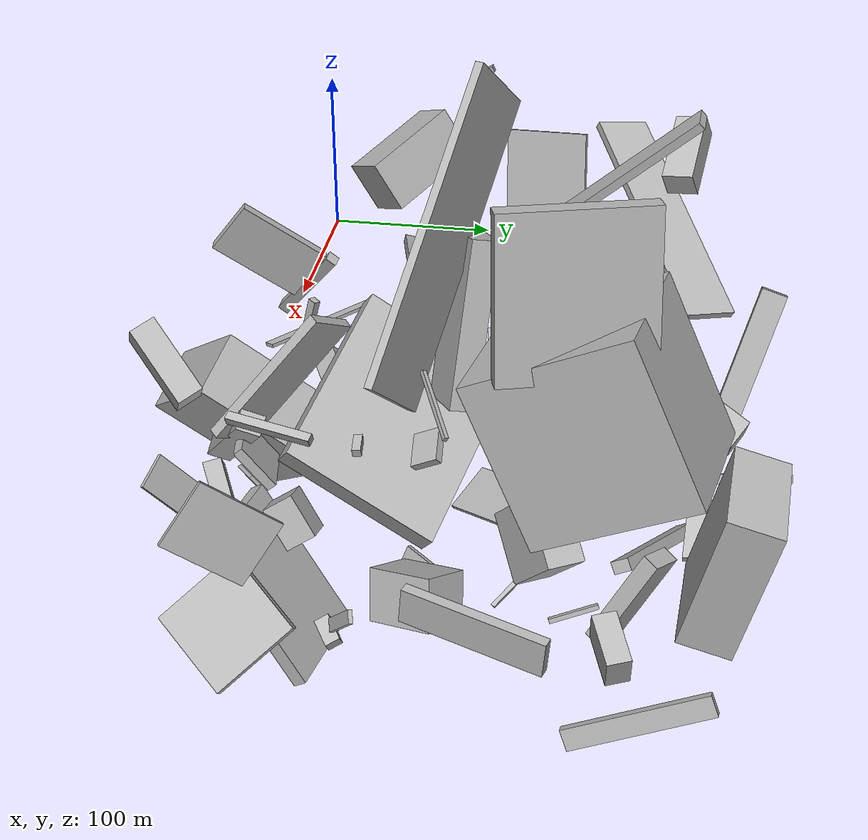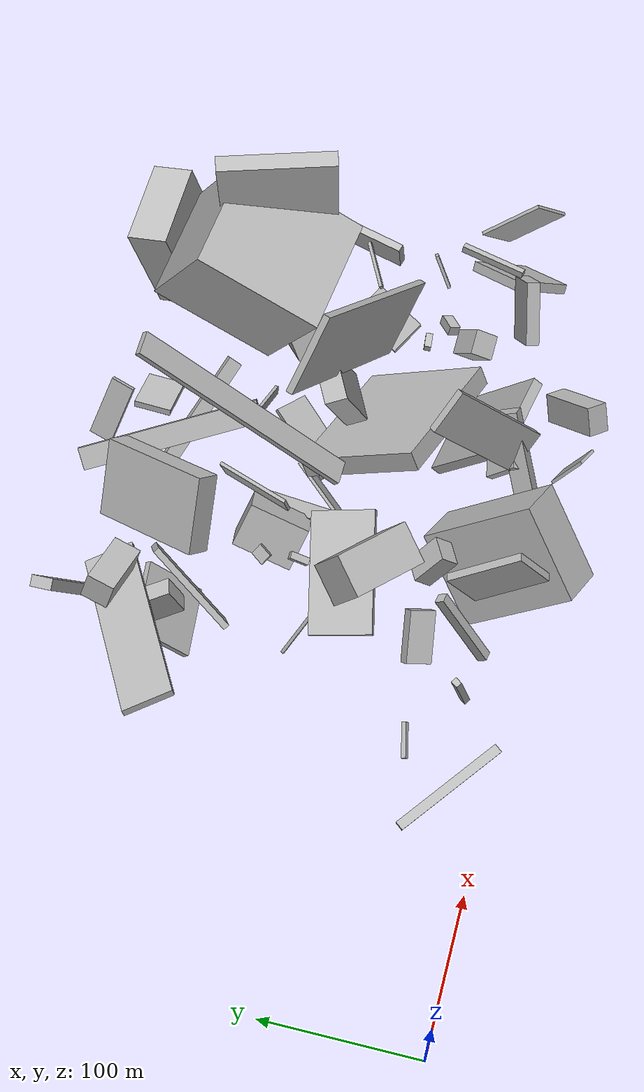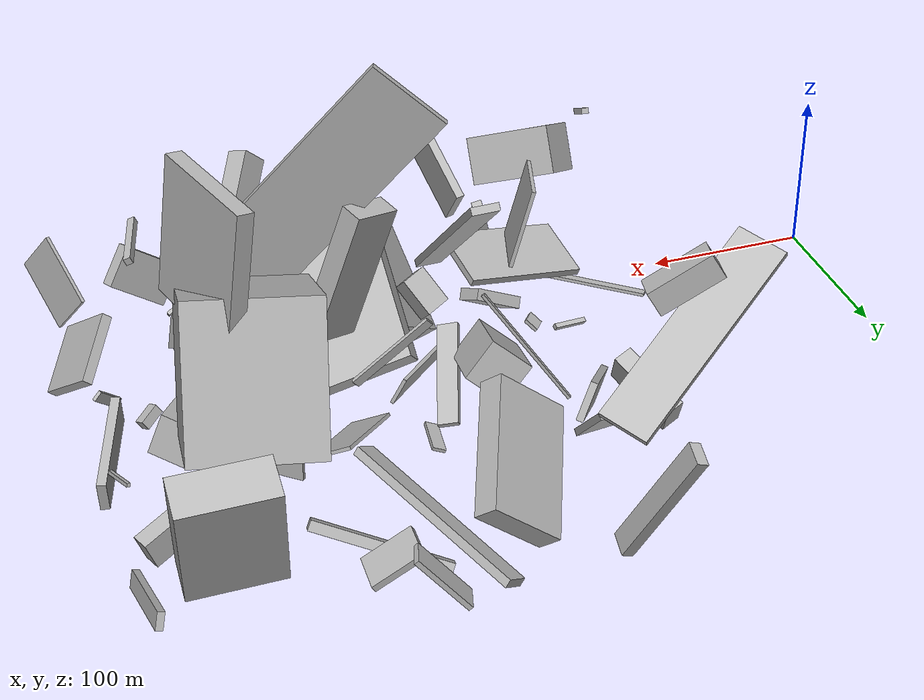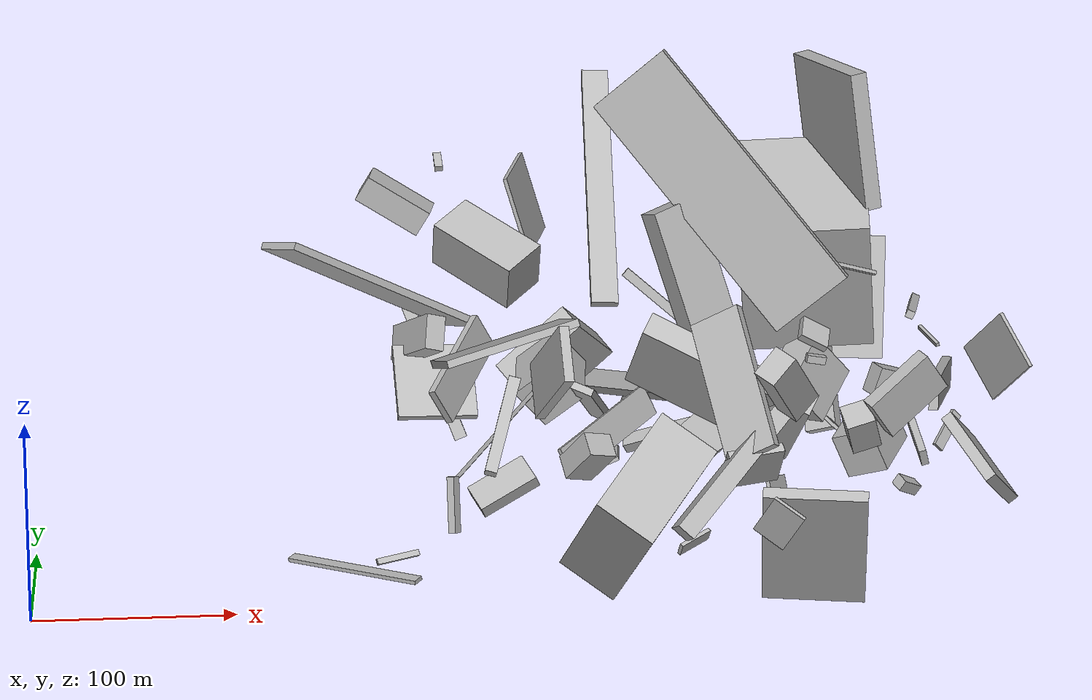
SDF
<sdf version="1.6">
 <world name="default">
  <model name="building_10">
   <static>0</static>
   <pose>349.3916682355485 102.32726992485685 73.5909858808304 0.6535508878157551 -0.4247499859793586 2.8508436178994367</pose>
   <link name="link">
    <gravity>0</gravity>
    <pose>0 0 6.0 0 0 0</pose>
    <collision name="collision"><geometry><box><size>94 79 12</size></box></geometry></collision>
    <visual name="visual">
     <cast_shadows>0</cast_shadows>
     <geometry><box><size>94 79 12</size></box></geometry>
     <material>
      <script>
       <uri>model://HANNAS_wall/materials/scripts</uri>
       <uri>model://HANNAS_wall/materials/textures</uri>
       <name>vrc/HANNAS_wall</name>
      </script>
     </material>
    </visual>
   </link>
  </model>
  <model name="building_12">
   <static>0</static>
   <pose>229.48509822428082 246.81121018663475 76.56518021819456 1.0808599442409188 -0.18571347631877108 -0.9684127808819307</pose>
   <link name="link">
    <gravity>0</gravity>
    <pose>0 0 65.0 0 0 0</pose>
    <collision name="collision"><geometry><box><size>30 4 130</size></box></geometry></collision>
    <visual name="visual">
     <cast_shadows>0</cast_shadows>
     <geometry><box><size>30 4 130</size></box></geometry>
     <material>
      <script>
       <uri>model://HANNAS_wall/materials/scripts</uri>
       <uri>model://HANNAS_wall/materials/textures</uri>
       <name>vrc/HANNAS_wall</name>
      </script>
     </material>
    </visual>
   </link>
  </model>
  <model name="building_13">
   <static>0</static>
   <pose>476.22596330048646 55.025035302774256 49.92848048790816 0.7145055037646388 -0.613770286919436 2.110345174796753</pose>
   <link name="link">
    <gravity>0</gravity>
    <pose>0 0 3.0 0 0 0</pose>
    <collision name="collision"><geometry><box><size>42 41 6</size></box></geometry></collision>
    <visual name="visual">
     <cast_shadows>0</cast_shadows>
     <geometry><box><size>42 41 6</size></box></geometry>
     <material>
      <script>
       <uri>model://HANNAS_wall/materials/scripts</uri>
       <uri>model://HANNAS_wall/materials/textures</uri>
       <name>vrc/HANNAS_wall</name>
      </script>
     </material>
    </visual>
   </link>
  </model>
  <model name="building_14">
   <static>0</static>
   <pose>239.23337273878616 221.9490028804767 78.75479436493148 2.0612796492238603 -0.2522621652858027 -0.6355748640469423</pose>
   <link name="link">
    <gravity>0</gravity>
    <pose>0 0 31.0 0 0 0</pose>
    <collision name="collision"><geometry><box><size>4 22 62</size></box></geometry></collision>
    <visual name="visual">
     <cast_shadows>0</cast_shadows>
     <geometry><box><size>4 22 62</size></box></geometry>
     <material>
      <script>
       <uri>model://HANNAS_wall/materials/scripts</uri>
       <uri>model://HANNAS_wall/materials/textures</uri>
       <name>vrc/HANNAS_wall</name>
      </script>
     </material>
    </visual>
   </link>
  </model>
  <model name="building_18">
   <static>0</static>
   <pose>212.61524835058827 193.76816005071336 38.704160822750225 -0.748787733979258 0.03146018518226774 0.07830064401386899</pose>
   <link name="link">
    <gravity>0</gravity>
    <pose>0 0 21.5 0 0 0</pose>
    <collision name="collision"><geometry><box><size>43 4 43</size></box></geometry></collision>
    <visual name="visual">
     <cast_shadows>0</cast_shadows>
     <geometry><box><size>43 4 43</size></box></geometry>
     <material>
      <script>
       <uri>model://HANNAS_wall/materials/scripts</uri>
       <uri>model://HANNAS_wall/materials/textures</uri>
       <name>vrc/HANNAS_wall</name>
      </script>
     </material>
    </visual>
   </link>
  </model>
  <model name="building_19">
   <static>0</static>
   <pose>317.66948863064147 39.43663740661593 59.19337390758678 2.3729776062961343 -0.6907638690431864 -1.3672699431326427</pose>
   <link name="link">
    <gravity>0</gravity>
    <pose>0 0 31.0 0 0 0</pose>
    <collision name="collision"><geometry><box><size>77 33 62</size></box></geometry></collision>
    <visual name="visual">
     <cast_shadows>0</cast_shadows>
     <geometry><box><size>77 33 62</size></box></geometry>
     <material>
      <script>
       <uri>model://HANNAS_wall/materials/scripts</uri>
       <uri>model://HANNAS_wall/materials/textures</uri>
       <name>vrc/HANNAS_wall</name>
      </script>
     </material>
    </visual>
   </link>
  </model>
  <model name="building_24">
   <static>0</static>
   <pose>291.91103221347555 149.31748298249272 60.06666547251819 2.817948339687129 -0.5257673515670295 -1.887484205575589</pose>
   <link name="link">
    <gravity>0</gravity>
    <pose>0 0 2.0 0 0 0</pose>
    <collision name="collision"><geometry><box><size>60 12 4</size></box></geometry></collision>
    <visual name="visual">
     <cast_shadows>0</cast_shadows>
     <geometry><box><size>60 12 4</size></box></geometry>
     <material>
      <script>
       <uri>model://HANNAS_wall/materials/scripts</uri>
       <uri>model://HANNAS_wall/materials/textures</uri>
       <name>vrc/HANNAS_wall</name>
      </script>
     </material>
    </visual>
   </link>
  </model>
  <model name="building_25">
   <static>0</static>
   <pose>437.33232358384225 255.41760869629286 48.93130082673491 -0.04354635736238333 -0.2560853431122381 -1.6002613684149918</pose>
   <link name="link">
    <gravity>0</gravity>
    <pose>0 0 34.0 0 0 0</pose>
    <collision name="collision"><geometry><box><size>25 52 68</size></box></geometry></collision>
    <visual name="visual">
     <cast_shadows>0</cast_shadows>
     <geometry><box><size>25 52 68</size></box></geometry>
     <material>
      <script>
       <uri>model://HANNAS_wall/materials/scripts</uri>
       <uri>model://HANNAS_wall/materials/textures</uri>
       <name>vrc/HANNAS_wall</name>
      </script>
     </material>
    </visual>
   </link>
  </model>
  <model name="building_35">
   <static>0</static>
   <pose>440.37714078266754 128.89351869209287 30.326729292973454 0.33700126294885036 0.25615929235676976 -2.0681124052917355</pose>
   <link name="link">
    <gravity>0</gravity>
    <pose>0 0 12.0 0 0 0</pose>
    <collision name="collision"><geometry><box><size>34 23 24</size></box></geometry></collision>
    <visual name="visual">
     <cast_shadows>0</cast_shadows>
     <geometry><box><size>34 23 24</size></box></geometry>
     <material>
      <script>
       <uri>model://HANNAS_wall/materials/scripts</uri>
       <uri>model://HANNAS_wall/materials/textures</uri>
       <name>vrc/HANNAS_wall</name>
      </script>
     </material>
    </visual>
   </link>
  </model>
  <model name="building_36">
   <static>0</static>
   <pose>345.0100710728461 74.01044800332367 124.65826033682245 -2.572017452332013 -0.42730659409162414 -2.30638103768517</pose>
   <link name="link">
    <gravity>0</gravity>
    <pose>0 0 38.5 0 0 0</pose>
    <collision name="collision"><geometry><box><size>5 28 77</size></box></geometry></collision>
    <visual name="visual">
     <cast_shadows>0</cast_shadows>
     <geometry><box><size>5 28 77</size></box></geometry>
     <material>
      <script>
       <uri>model://HANNAS_wall/materials/scripts</uri>
       <uri>model://HANNAS_wall/materials/textures</uri>
       <name>vrc/HANNAS_wall</name>
      </script>
     </material>
    </visual>
   </link>
  </model>
  <model name="building_39">
   <static>0</static>
   <pose>460.48556344403187 215.51236503256763 37.234120739768585 -0.3211005590233174 0.07317322246782806 -1.2219230318242558</pose>
   <link name="link">
    <gravity>0</gravity>
    <pose>0 0 8.0 0 0 0</pose>
    <collision name="collision"><geometry><box><size>11 25 16</size></box></geometry></collision>
    <visual name="visual">
     <cast_shadows>0</cast_shadows>
     <geometry><box><size>11 25 16</size></box></geometry>
     <material>
      <script>
       <uri>model://HANNAS_wall/materials/scripts</uri>
       <uri>model://HANNAS_wall/materials/textures</uri>
       <name>vrc/HANNAS_wall</name>
      </script>
     </material>
    </visual>
   </link>
  </model>
  <model name="building_51">
   <static>0</static>
   <pose>257.2610780205307 14.029951884063063 100.75902783209997 0.6472720785679406 -0.09924337517018453 -2.951900712644226</pose>
   <link name="link">
    <gravity>0</gravity>
    <pose>0 0 14.5 0 0 0</pose>
    <collision name="collision"><geometry><box><size>5 50 29</size></box></geometry></collision>
    <visual name="visual">
     <cast_shadows>0</cast_shadows>
     <geometry><box><size>5 50 29</size></box></geometry>
     <material>
      <script>
       <uri>model://HANNAS_wall/materials/scripts</uri>
       <uri>model://HANNAS_wall/materials/textures</uri>
       <name>vrc/HANNAS_wall</name>
      </script>
     </material>
    </visual>
   </link>
  </model>
  <model name="building_53">
   <static>0</static>
   <pose>400.7106434574868 111.9386753954937 119.36921296670712 -0.006293187863851989 -0.7145801039412174 -0.34941741395422776</pose>
   <link name="link">
    <gravity>0</gravity>
    <pose>0 0 75.0 0 0 0</pose>
    <collision name="collision"><geometry><box><size>48 4 150</size></box></geometry></collision>
    <visual name="visual">
     <cast_shadows>0</cast_shadows>
     <geometry><box><size>48 4 150</size></box></geometry>
     <material>
      <script>
       <uri>model://HANNAS_wall/materials/scripts</uri>
       <uri>model://HANNAS_wall/materials/textures</uri>
       <name>vrc/HANNAS_wall</name>
      </script>
     </material>
    </visual>
   </link>
  </model>
  <model name="building_55">
   <static>0</static>
   <pose>294.34741307467766 124.6659244268466 118.38746883575033 -0.8548562881266696 0.041120613764117055 -0.02408567908058497</pose>
   <link name="link">
    <gravity>0</gravity>
    <pose>0 0 75.0 0 0 0</pose>
    <collision name="collision"><geometry><box><size>14 4 150</size></box></geometry></collision>
    <visual name="visual">
     <cast_shadows>0</cast_shadows>
     <geometry><box><size>14 4 150</size></box></geometry>
     <material>
      <script>
       <uri>model://HANNAS_wall/materials/scripts</uri>
       <uri>model://HANNAS_wall/materials/textures</uri>
       <name>vrc/HANNAS_wall</name>
      </script>
     </material>
    </visual>
   </link>
  </model>
  <model name="building_58">
   <static>0</static>
   <pose>284.0725906182624 228.69690941253634 53.98500768876988 0.8139213473627945 -0.4456234440804293 -1.9469502249276551</pose>
   <link name="link">
    <gravity>0</gravity>
    <pose>0 0 7.5 0 0 0</pose>
    <collision name="collision"><geometry><box><size>77 48 15</size></box></geometry></collision>
    <visual name="visual">
     <cast_shadows>0</cast_shadows>
     <geometry><box><size>77 48 15</size></box></geometry>
     <material>
      <script>
       <uri>model://HANNAS_wall/materials/scripts</uri>
       <uri>model://HANNAS_wall/materials/textures</uri>
       <name>vrc/HANNAS_wall</name>
      </script>
     </material>
    </visual>
   </link>
  </model>
  <model name="building_59">
   <static>0</static>
   <pose>431.34216529290785 194.8392648867563 155.7864545866241 -0.014089760076854245 -0.14219865048703761 0.292946306840055</pose>
   <link name="link">
    <gravity>0</gravity>
    <pose>0 0 37.0 0 0 0</pose>
    <collision name="collision"><geometry><box><size>9 68 74</size></box></geometry></collision>
    <visual name="visual">
     <cast_shadows>0</cast_shadows>
     <geometry><box><size>9 68 74</size></box></geometry>
     <material>
      <script>
       <uri>model://HANNAS_wall/materials/scripts</uri>
       <uri>model://HANNAS_wall/materials/textures</uri>
       <name>vrc/HANNAS_wall</name>
      </script>
     </material>
    </visual>
   </link>
  </model>
  <model name="building_74">
   <static>0</static>
   <pose>238.5132757127583 127.9159019829206 98.03634476546848 1.296981847227757 -0.2285636660358127 0.21826736881247227</pose>
   <link name="link">
    <gravity>0</gravity>
    <pose>0 0 19.0 0 0 0</pose>
    <collision name="collision"><geometry><box><size>72 4 38</size></box></geometry></collision>
    <visual name="visual">
     <cast_shadows>0</cast_shadows>
     <geometry><box><size>72 4 38</size></box></geometry>
     <material>
      <script>
       <uri>model://HANNAS_wall/materials/scripts</uri>
       <uri>model://HANNAS_wall/materials/textures</uri>
       <name>vrc/HANNAS_wall</name>
      </script>
     </material>
    </visual>
   </link>
  </model>
  <model name="building_80">
   <static>0</static>
   <pose>446.25060877278156 68.4785522777939 128.05815517789685 -1.17869596853251 0.0440624799986621 1.3221318205698755</pose>
   <link name="link">
    <gravity>0</gravity>
    <pose>0 0 2.0 0 0 0</pose>
    <collision name="collision"><geometry><box><size>39 4 4</size></box></geometry></collision>
    <visual name="visual">
     <cast_shadows>0</cast_shadows>
     <geometry><box><size>39 4 4</size></box></geometry>
     <material>
      <script>
       <uri>model://HANNAS_wall/materials/scripts</uri>
       <uri>model://HANNAS_wall/materials/textures</uri>
       <name>vrc/HANNAS_wall</name>
      </script>
     </material>
    </visual>
   </link>
  </model>
  <model name="building_82">
   <static>0</static>
   <pose>405.59590806093286 127.7666078524358 99.91618201187363 2.563763675464144 0.512432709078715 -1.823949339402601</pose>
   <link name="link">
    <gravity>0</gravity>
    <pose>0 0 2.0 0 0 0</pose>
    <collision name="collision"><geometry><box><size>14 16 4</size></box></geometry></collision>
    <visual name="visual">
     <cast_shadows>0</cast_shadows>
     <geometry><box><size>14 16 4</size></box></geometry>
     <material>
      <script>
       <uri>model://HANNAS_wall/materials/scripts</uri>
       <uri>model://HANNAS_wall/materials/textures</uri>
       <name>vrc/HANNAS_wall</name>
      </script>
     </material>
    </visual>
   </link>
  </model>
  <model name="building_86">
   <static>0</static>
   <pose>450.1639106515763 90.75383849006136 29.426572197452867 2.7174561136163535 -0.4134281092547173 -2.510542884081294</pose>
   <link name="link">
    <gravity>0</gravity>
    <pose>0 0 3.0 0 0 0</pose>
    <collision name="collision"><geometry><box><size>13 7 6</size></box></geometry></collision>
    <visual name="visual">
     <cast_shadows>0</cast_shadows>
     <geometry><box><size>13 7 6</size></box></geometry>
     <material>
      <script>
       <uri>model://HANNAS_wall/materials/scripts</uri>
       <uri>model://HANNAS_wall/materials/textures</uri>
       <name>vrc/HANNAS_wall</name>
      </script>
     </material>
    </visual>
   </link>
  </model>
  <model name="building_95">
   <static>0</static>
   <pose>273.7248488906518 70.18704893144238 47.54533790742657 -0.7844700713215164 -0.21889407537329275 -2.6709768269853287</pose>
   <link name="link">
    <gravity>0</gravity>
    <pose>0 0 12.0 0 0 0</pose>
    <collision name="collision"><geometry><box><size>16 13 24</size></box></geometry></collision>
    <visual name="visual">
     <cast_shadows>0</cast_shadows>
     <geometry><box><size>16 13 24</size></box></geometry>
     <material>
      <script>
       <uri>model://HANNAS_wall/materials/scripts</uri>
       <uri>model://HANNAS_wall/materials/textures</uri>
       <name>vrc/HANNAS_wall</name>
      </script>
     </material>
    </visual>
   </link>
  </model>
  <model name="building_96">
   <static>0</static>
   <pose>400.5697491202445 94.6565543378719 94.12352803319617 1.1562630829018876 1.3682557275964087 2.813224508309441</pose>
   <link name="link">
    <gravity>0</gravity>
    <pose>0 0 2.0 0 0 0</pose>
    <collision name="collision"><geometry><box><size>4 10 4</size></box></geometry></collision>
    <visual name="visual">
     <cast_shadows>0</cast_shadows>
     <geometry><box><size>4 10 4</size></box></geometry>
     <material>
      <script>
       <uri>model://HANNAS_wall/materials/scripts</uri>
       <uri>model://HANNAS_wall/materials/textures</uri>
       <name>vrc/HANNAS_wall</name>
      </script>
     </material>
    </visual>
   </link>
  </model>
  <model name="building_99">
   <static>0</static>
   <pose>325.7690446873863 239.02987420319448 42.30134836747122 2.9189996788272947 -0.5412475679899214 0.5661739600422835</pose>
   <link name="link">
    <gravity>0</gravity>
    <pose>0 0 2.5 0 0 0</pose>
    <collision name="collision"><geometry><box><size>14 114 5</size></box></geometry></collision>
    <visual name="visual">
     <cast_shadows>0</cast_shadows>
     <geometry><box><size>14 114 5</size></box></geometry>
     <material>
      <script>
       <uri>model://HANNAS_wall/materials/scripts</uri>
       <uri>model://HANNAS_wall/materials/textures</uri>
       <name>vrc/HANNAS_wall</name>
      </script>
     </material>
    </visual>
   </link>
  </model>
  <model name="building_104">
   <static>0</static>
   <pose>230.3023630131379 98.53153136267741 144.23090952028673 0.39849992417769875 0.3562290253673508 -0.694200019126381</pose>
   <link name="link">
    <gravity>0</gravity>
    <pose>0 0 13.0 0 0 0</pose>
    <collision name="collision"><geometry><box><size>49 25 26</size></box></geometry></collision>
    <visual name="visual">
     <cast_shadows>0</cast_shadows>
     <geometry><box><size>49 25 26</size></box></geometry>
     <material>
      <script>
       <uri>model://HANNAS_wall/materials/scripts</uri>
       <uri>model://HANNAS_wall/materials/textures</uri>
       <name>vrc/HANNAS_wall</name>
      </script>
     </material>
    </visual>
   </link>
  </model>
  <model name="building_105">
   <static>0</static>
   <pose>271.30619906346806 93.53425962507262 42.439003532259214 -1.3603153178558054 -0.4092264801191909 -0.7767480831438839</pose>
   <link name="link">
    <gravity>0</gravity>
    <pose>0 0 40.0 0 0 0</pose>
    <collision name="collision"><geometry><box><size>2 17 80</size></box></geometry></collision>
    <visual name="visual">
     <cast_shadows>0</cast_shadows>
     <geometry><box><size>2 17 80</size></box></geometry>
     <material>
      <script>
       <uri>model://HANNAS_wall/materials/scripts</uri>
       <uri>model://HANNAS_wall/materials/textures</uri>
       <name>vrc/HANNAS_wall</name>
      </script>
     </material>
    </visual>
   </link>
  </model>
  <model name="building_106">
   <static>0</static>
   <pose>208.72486589099668 227.0639284925021 140.1446841569194 1.0284161177038877 0.12119856388261105 -1.7923693753381995</pose>
   <link name="link">
    <gravity>0</gravity>
    <pose>0 0 19.0 0 0 0</pose>
    <collision name="collision"><geometry><box><size>16 15 38</size></box></geometry></collision>
    <visual name="visual">
     <cast_shadows>0</cast_shadows>
     <geometry><box><size>16 15 38</size></box></geometry>
     <material>
      <script>
       <uri>model://HANNAS_wall/materials/scripts</uri>
       <uri>model://HANNAS_wall/materials/textures</uri>
       <name>vrc/HANNAS_wall</name>
      </script>
     </material>
    </visual>
   </link>
  </model>
  <model name="building_107">
   <static>0</static>
   <pose>424.16374304943446 165.512062296807 37.363456632691666 -2.582351195504321 0.3352104177115838 0.9760771332291052</pose>
   <link name="link">
    <gravity>0</gravity>
    <pose>0 0 1.0 0 0 0</pose>
    <collision name="collision"><geometry><box><size>2 14 2</size></box></geometry></collision>
    <visual name="visual">
     <cast_shadows>0</cast_shadows>
     <geometry><box><size>2 14 2</size></box></geometry>
     <material>
      <script>
       <uri>model://HANNAS_wall/materials/scripts</uri>
       <uri>model://HANNAS_wall/materials/textures</uri>
       <name>vrc/HANNAS_wall</name>
      </script>
     </material>
    </visual>
   </link>
  </model>
  <model name="building_111">
   <static>0</static>
   <pose>243.53592268075636 160.92521444073228 87.60124350626225 0.9120278224321319 -0.08300068568786192 0.9455152106159637</pose>
   <link name="link">
    <gravity>0</gravity>
    <pose>0 0 4.0 0 0 0</pose>
    <collision name="collision"><geometry><box><size>9 2 8</size></box></geometry></collision>
    <visual name="visual">
     <cast_shadows>0</cast_shadows>
     <geometry><box><size>9 2 8</size></box></geometry>
     <material>
      <script>
       <uri>model://HANNAS_wall/materials/scripts</uri>
       <uri>model://HANNAS_wall/materials/textures</uri>
       <name>vrc/HANNAS_wall</name>
      </script>
     </material>
    </visual>
   </link>
  </model>
  <model name="building_112">
   <static>0</static>
   <pose>390.97648835410354 33.76871728303013 41.780903081239686 -2.5872766260918945 0.013958830875353993 -0.19258108039884514</pose>
   <link name="link">
    <gravity>0</gravity>
    <pose>0 0 40.0 0 0 0</pose>
    <collision name="collision"><geometry><box><size>53 7 80</size></box></geometry></collision>
    <visual name="visual">
     <cast_shadows>0</cast_shadows>
     <geometry><box><size>53 7 80</size></box></geometry>
     <material>
      <script>
       <uri>model://HANNAS_wall/materials/scripts</uri>
       <uri>model://HANNAS_wall/materials/textures</uri>
       <name>vrc/HANNAS_wall</name>
      </script>
     </material>
    </visual>
   </link>
  </model>
  <model name="building_117">
   <static>0</static>
   <pose>417.93628609904954 223.77387529917905 83.9825499461204 -0.015484055325494121 0.05901370770312389 -2.2944045963230533</pose>
   <link name="link">
    <gravity>0</gravity>
    <pose>0 0 5.5 0 0 0</pose>
    <collision name="collision"><geometry><box><size>2 58 11</size></box></geometry></collision>
    <visual name="visual">
     <cast_shadows>0</cast_shadows>
     <geometry><box><size>2 58 11</size></box></geometry>
     <material>
      <script>
       <uri>model://HANNAS_wall/materials/scripts</uri>
       <uri>model://HANNAS_wall/materials/textures</uri>
       <name>vrc/HANNAS_wall</name>
      </script>
     </material>
    </visual>
   </link>
  </model>
  <model name="building_121">
   <static>0</static>
   <pose>328.11986078418664 26.669377381381253 19.15179130055455 -0.27886897998437765 -0.5287228812566788 2.2956111225277134</pose>
   <link name="link">
    <gravity>0</gravity>
    <pose>0 0 3.5 0 0 0</pose>
    <collision name="collision"><geometry><box><size>2 19 7</size></box></geometry></collision>
    <visual name="visual">
     <cast_shadows>0</cast_shadows>
     <geometry><box><size>2 19 7</size></box></geometry>
     <material>
      <script>
       <uri>model://HANNAS_wall/materials/scripts</uri>
       <uri>model://HANNAS_wall/materials/textures</uri>
       <name>vrc/HANNAS_wall</name>
      </script>
     </material>
    </visual>
   </link>
  </model>
  <model name="building_123">
   <static>0</static>
   <pose>349.50844695943294 274.4303103548368 49.57213672807366 -3.0361604324933262 0.7285246282814581 -0.2122072842181636</pose>
   <link name="link">
    <gravity>0</gravity>
    <pose>0 0 20.0 0 0 0</pose>
    <collision name="collision"><geometry><box><size>3 15 40</size></box></geometry></collision>
    <visual name="visual">
     <cast_shadows>0</cast_shadows>
     <geometry><box><size>3 15 40</size></box></geometry>
     <material>
      <script>
       <uri>model://HANNAS_wall/materials/scripts</uri>
       <uri>model://HANNAS_wall/materials/textures</uri>
       <name>vrc/HANNAS_wall</name>
      </script>
     </material>
    </visual>
   </link>
  </model>
  <model name="building_131">
   <static>0</static>
   <pose>416.89117948646066 64.8022007375647 73.90119436589094 2.779946508873844 -0.5589912209663616 1.7378568796102938</pose>
   <link name="link">
    <gravity>0</gravity>
    <pose>0 0 10.5 0 0 0</pose>
    <collision name="collision"><geometry><box><size>15 15 21</size></box></geometry></collision>
    <visual name="visual">
     <cast_shadows>0</cast_shadows>
     <geometry><box><size>15 15 21</size></box></geometry>
     <material>
      <script>
       <uri>model://HANNAS_wall/materials/scripts</uri>
       <uri>model://HANNAS_wall/materials/textures</uri>
       <name>vrc/HANNAS_wall</name>
      </script>
     </material>
    </visual>
   </link>
  </model>
  <model name="building_134">
   <static>0</static>
   <pose>473.2092517092882 102.80221659873877 50.329254311452274 -0.34425445049502496 -0.7518744126282482 0.7664647564204032</pose>
   <link name="link">
    <gravity>0</gravity>
    <pose>0 0 3.0 0 0 0</pose>
    <collision name="collision"><geometry><box><size>22 2 6</size></box></geometry></collision>
    <visual name="visual">
     <cast_shadows>0</cast_shadows>
     <geometry><box><size>22 2 6</size></box></geometry>
     <material>
      <script>
       <uri>model://HANNAS_wall/materials/scripts</uri>
       <uri>model://HANNAS_wall/materials/textures</uri>
       <name>vrc/HANNAS_wall</name>
      </script>
     </material>
    </visual>
   </link>
  </model>
  <model name="building_135">
   <static>0</static>
   <pose>259.7524084191949 162.81516267793526 61.41519655487346 0.8662896799515752 -0.260429187220049 1.4507244799890169</pose>
   <link name="link">
    <gravity>0</gravity>
    <pose>0 0 13.5 0 0 0</pose>
    <collision name="collision"><geometry><box><size>37 25 27</size></box></geometry></collision>
    <visual name="visual">
     <cast_shadows>0</cast_shadows>
     <geometry><box><size>37 25 27</size></box></geometry>
     <material>
      <script>
       <uri>model://HANNAS_wall/materials/scripts</uri>
       <uri>model://HANNAS_wall/materials/textures</uri>
       <name>vrc/HANNAS_wall</name>
      </script>
     </material>
    </visual>
   </link>
  </model>
  <model name="building_137">
   <static>0</static>
   <pose>377.3969869281345 209.21070852343223 126.43416841068387 1.4971494299194534 -0.4404359047568102 1.4512187193585764</pose>
   <link name="link">
    <gravity>0</gravity>
    <pose>0 0 34.5 0 0 0</pose>
    <collision name="collision"><geometry><box><size>80 80 69</size></box></geometry></collision>
    <visual name="visual">
     <cast_shadows>0</cast_shadows>
     <geometry><box><size>80 80 69</size></box></geometry>
     <material>
      <script>
       <uri>model://HANNAS_wall/materials/scripts</uri>
       <uri>model://HANNAS_wall/materials/textures</uri>
       <name>vrc/HANNAS_wall</name>
      </script>
     </material>
    </visual>
   </link>
  </model>
  <model name="building_145">
   <static>0</static>
   <pose>219.14466133815276 268.7225535220093 44.01041874245457 2.479341711461148 1.1021400325330275 -0.6882806307456931</pose>
   <link name="link">
    <gravity>0</gravity>
    <pose>0 0 3.5 0 0 0</pose>
    <collision name="collision"><geometry><box><size>80 14 7</size></box></geometry></collision>
    <visual name="visual">
     <cast_shadows>0</cast_shadows>
     <geometry><box><size>80 14 7</size></box></geometry>
     <material>
      <script>
       <uri>model://HANNAS_wall/materials/scripts</uri>
       <uri>model://HANNAS_wall/materials/textures</uri>
       <name>vrc/HANNAS_wall</name>
      </script>
     </material>
    </visual>
   </link>
  </model>
  <model name="building_148">
   <static>0</static>
   <pose>362.59524815135086 3.268987098557255 29.85655008420231 -0.6083976839428233 0.3461218881436275 -2.174824214978431</pose>
   <link name="link">
    <gravity>0</gravity>
    <pose>0 0 13.0 0 0 0</pose>
    <collision name="collision"><geometry><box><size>2 18 26</size></box></geometry></collision>
    <visual name="visual">
     <cast_shadows>0</cast_shadows>
     <geometry><box><size>2 18 26</size></box></geometry>
     <material>
      <script>
       <uri>model://HANNAS_wall/materials/scripts</uri>
       <uri>model://HANNAS_wall/materials/textures</uri>
       <name>vrc/HANNAS_wall</name>
      </script>
     </material>
    </visual>
   </link>
  </model>
  <model name="building_149">
   <static>0</static>
   <pose>181.87841698567374 56.60708240878649 9.062003013183876 -2.996395140976409 -0.5150113152872757 -1.4197979694479912</pose>
   <link name="link">
    <gravity>0</gravity>
    <pose>0 0 1.5 0 0 0</pose>
    <collision name="collision"><geometry><box><size>3 22 3</size></box></geometry></collision>
    <visual name="visual">
     <cast_shadows>0</cast_shadows>
     <geometry><box><size>3 22 3</size></box></geometry>
     <material>
      <script>
       <uri>model://HANNAS_wall/materials/scripts</uri>
       <uri>model://HANNAS_wall/materials/textures</uri>
       <name>vrc/HANNAS_wall</name>
      </script>
     </material>
    </visual>
   </link>
  </model>
  <model name="building_153">
   <static>0</static>
   <pose>380.7002981734349 110.94132560823073 15.219607034342825 2.163687478476436 -1.1763794898559221 2.00263197659639</pose>
   <link name="link">
    <gravity>0</gravity>
    <pose>0 0 10.5 0 0 0</pose>
    <collision name="collision"><geometry><box><size>22 2 21</size></box></geometry></collision>
    <visual name="visual">
     <cast_shadows>0</cast_shadows>
     <geometry><box><size>22 2 21</size></box></geometry>
     <material>
      <script>
       <uri>model://HANNAS_wall/materials/scripts</uri>
       <uri>model://HANNAS_wall/materials/textures</uri>
       <name>vrc/HANNAS_wall</name>
      </script>
     </material>
    </visual>
   </link>
  </model>
  <model name="building_155">
   <static>0</static>
   <pose>443.70274099788014 48.496896192804385 81.11471564638038 -0.6799716143112332 -0.17361044547449694 1.964356244355377</pose>
   <link name="link">
    <gravity>0</gravity>
    <pose>0 0 12.0 0 0 0</pose>
    <collision name="collision"><geometry><box><size>8 38 24</size></box></geometry></collision>
    <visual name="visual">
     <cast_shadows>0</cast_shadows>
     <geometry><box><size>8 38 24</size></box></geometry>
     <material>
      <script>
       <uri>model://HANNAS_wall/materials/scripts</uri>
       <uri>model://HANNAS_wall/materials/textures</uri>
       <name>vrc/HANNAS_wall</name>
      </script>
     </material>
    </visual>
   </link>
  </model>
  <model name="building_156">
   <static>0</static>
   <pose>236.79167647608966 123.70242397700025 47.44943238112544 -0.8628808319500059 -0.0837657575022122 1.0331418457731836</pose>
   <link name="link">
    <gravity>0</gravity>
    <pose>0 0 1.0 0 0 0</pose>
    <collision name="collision"><geometry><box><size>2 80 2</size></box></geometry></collision>
    <visual name="visual">
     <cast_shadows>0</cast_shadows>
     <geometry><box><size>2 80 2</size></box></geometry>
     <material>
      <script>
       <uri>model://HANNAS_wall/materials/scripts</uri>
       <uri>model://HANNAS_wall/materials/textures</uri>
       <name>vrc/HANNAS_wall</name>
      </script>
     </material>
    </visual>
   </link>
  </model>
  <model name="building_158">
   <static>0</static>
   <pose>375.28855959430456 3.3929805326981444 115.39659602067553 2.7165728915501433 -0.7208553943113117 -2.1278164775056285</pose>
   <link name="link">
    <gravity>0</gravity>
    <pose>0 0 8.5 0 0 0</pose>
    <collision name="collision"><geometry><box><size>40 13 17</size></box></geometry></collision>
    <visual name="visual">
     <cast_shadows>0</cast_shadows>
     <geometry><box><size>40 13 17</size></box></geometry>
     <material>
      <script>
       <uri>model://HANNAS_wall/materials/scripts</uri>
       <uri>model://HANNAS_wall/materials/textures</uri>
       <name>vrc/HANNAS_wall</name>
      </script>
     </material>
    </visual>
   </link>
  </model>
  <model name="building_162">
   <static>0</static>
   <pose>202.88010062075213 213.75267076768853 67.92094679265463 0.29698759188086565 0.39763364647096283 2.013961741302529</pose>
   <link name="link">
    <gravity>0</gravity>
    <pose>0 0 9.5 0 0 0</pose>
    <collision name="collision"><geometry><box><size>41 11 19</size></box></geometry></collision>
    <visual name="visual">
     <cast_shadows>0</cast_shadows>
     <geometry><box><size>41 11 19</size></box></geometry>
     <material>
      <script>
       <uri>model://HANNAS_wall/materials/scripts</uri>
       <uri>model://HANNAS_wall/materials/textures</uri>
       <name>vrc/HANNAS_wall</name>
      </script>
     </material>
    </visual>
   </link>
  </model>
  <model name="building_173">
   <static>0</static>
   <pose>329.60698019553996 129.2490764829624 125.58402286423863 0.7516218895704347 -1.2500316972311356 2.856507641753045</pose>
   <link name="link">
    <gravity>0</gravity>
    <pose>0 0 14.0 0 0 0</pose>
    <collision name="collision"><geometry><box><size>80 13 28</size></box></geometry></collision>
    <visual name="visual">
     <cast_shadows>0</cast_shadows>
     <geometry><box><size>80 13 28</size></box></geometry>
     <material>
      <script>
       <uri>model://HANNAS_wall/materials/scripts</uri>
       <uri>model://HANNAS_wall/materials/textures</uri>
       <name>vrc/HANNAS_wall</name>
      </script>
     </material>
    </visual>
   </link>
  </model>
  <model name="building_178">
   <static>0</static>
   <pose>406.06144035248263 127.68613502491807 138.56114054855863 1.919956359209161 0.451940114937244 2.1503712479924686</pose>
   <link name="link">
    <gravity>0</gravity>
    <pose>0 0 19.0 0 0 0</pose>
    <collision name="collision"><geometry><box><size>2 2 38</size></box></geometry></collision>
    <visual name="visual">
     <cast_shadows>0</cast_shadows>
     <geometry><box><size>2 2 38</size></box></geometry>
     <material>
      <script>
       <uri>model://HANNAS_wall/materials/scripts</uri>
       <uri>model://HANNAS_wall/materials/textures</uri>
       <name>vrc/HANNAS_wall</name>
      </script>
     </material>
    </visual>
   </link>
  </model>
  <model name="building_182">
   <static>0</static>
   <pose>301.3140832950397 147.87328450425878 25.9699677019895 1.6000615753981817 0.42112996641447037 3.036068734776234</pose>
   <link name="link">
    <gravity>0</gravity>
    <pose>0 0 11.5 0 0 0</pose>
    <collision name="collision"><geometry><box><size>8 2 23</size></box></geometry></collision>
    <visual name="visual">
     <cast_shadows>0</cast_shadows>
     <geometry><box><size>8 2 23</size></box></geometry>
     <material>
      <script>
       <uri>model://HANNAS_wall/materials/scripts</uri>
       <uri>model://HANNAS_wall/materials/textures</uri>
       <name>vrc/HANNAS_wall</name>
      </script>
     </material>
    </visual>
   </link>
  </model>
  <model name="building_188">
   <static>0</static>
   <pose>208.75072259915976 26.373017400887413 29.867498202269797 -0.1537229172736414 0.17898019899022632 0.907567922051066</pose>
   <link name="link">
    <gravity>0</gravity>
    <pose>0 0 14.0 0 0 0</pose>
    <collision name="collision"><geometry><box><size>5 4 28</size></box></geometry></collision>
    <visual name="visual">
     <cast_shadows>0</cast_shadows>
     <geometry><box><size>5 4 28</size></box></geometry>
     <material>
      <script>
       <uri>model://HANNAS_wall/materials/scripts</uri>
       <uri>model://HANNAS_wall/materials/textures</uri>
       <name>vrc/HANNAS_wall</name>
      </script>
     </material>
    </visual>
   </link>
  </model>
  <model name="building_194">
   <static>0</static>
   <pose>485.8739731906725 57.76238853683702 104.11778830699261 -1.372247985815631 -0.6756550686408774 -1.2038055014781126</pose>
   <link name="link">
    <gravity>0</gravity>
    <pose>0 0 1.0 0 0 0</pose>
    <collision name="collision"><geometry><box><size>41 31 2</size></box></geometry></collision>
    <visual name="visual">
     <cast_shadows>0</cast_shadows>
     <geometry><box><size>41 31 2</size></box></geometry>
     <material>
      <script>
       <uri>model://HANNAS_wall/materials/scripts</uri>
       <uri>model://HANNAS_wall/materials/textures</uri>
       <name>vrc/HANNAS_wall</name>
      </script>
     </material>
    </visual>
   </link>
  </model>
  <model name="building_196">
   <static>0</static>
   <pose>320.5078524619625 8.914473411726185 31.798659249320668 0.7991636875000957 0.391867616991378 1.7565050338478254</pose>
   <link name="link">
    <gravity>0</gravity>
    <pose>0 0 40.0 0 0 0</pose>
    <collision name="collision"><geometry><box><size>12 10 80</size></box></geometry></collision>
    <visual name="visual">
     <cast_shadows>0</cast_shadows>
     <geometry><box><size>12 10 80</size></box></geometry>
     <material>
      <script>
       <uri>model://HANNAS_wall/materials/scripts</uri>
       <uri>model://HANNAS_wall/materials/textures</uri>
       <name>vrc/HANNAS_wall</name>
      </script>
     </material>
    </visual>
   </link>
  </model>
  <model name="building_199">
   <static>0</static>
   <pose>373.6263971437706 41.01793607747712 57.46837589282002 -1.69539909809582 0.9181007343438258 1.6530902472657978</pose>
   <link name="link">
    <gravity>0</gravity>
    <pose>0 0 14.5 0 0 0</pose>
    <collision name="collision"><geometry><box><size>25 5 29</size></box></geometry></collision>
    <visual name="visual">
     <cast_shadows>0</cast_shadows>
     <geometry><box><size>25 5 29</size></box></geometry>
     <material>
      <script>
       <uri>model://HANNAS_wall/materials/scripts</uri>
       <uri>model://HANNAS_wall/materials/textures</uri>
       <name>vrc/HANNAS_wall</name>
      </script>
     </material>
    </visual>
   </link>
  </model>
  <model name="building_207">
   <static>0</static>
   <pose>329.98008790236156 179.6620989871628 101.57745405058517 0.7100252669618717 0.12346226375073975 1.551460708162331</pose>
   <link name="link">
    <gravity>0</gravity>
    <pose>0 0 2.5 0 0 0</pose>
    <collision name="collision"><geometry><box><size>2 52 5</size></box></geometry></collision>
    <visual name="visual">
     <cast_shadows>0</cast_shadows>
     <geometry><box><size>2 52 5</size></box></geometry>
     <material>
      <script>
       <uri>model://HANNAS_wall/materials/scripts</uri>
       <uri>model://HANNAS_wall/materials/textures</uri>
       <name>vrc/HANNAS_wall</name>
      </script>
     </material>
    </visual>
   </link>
  </model>
  <model name="building_214">
   <static>0</static>
   <pose>235.09436886370537 59.795995113520185 44.57152050846038 2.630715583916733 0.48124405417936383 -2.9895934052344764</pose>
   <link name="link">
    <gravity>0</gravity>
    <pose>0 0 3.5 0 0 0</pose>
    <collision name="collision"><geometry><box><size>32 17 7</size></box></geometry></collision>
    <visual name="visual">
     <cast_shadows>0</cast_shadows>
     <geometry><box><size>32 17 7</size></box></geometry>
     <material>
      <script>
       <uri>model://HANNAS_wall/materials/scripts</uri>
       <uri>model://HANNAS_wall/materials/textures</uri>
       <name>vrc/HANNAS_wall</name>
      </script>
     </material>
    </visual>
   </link>
  </model>
  <model name="building_222">
   <static>0</static>
   <pose>475.6599672235285 229.88372499729638 18.19482392239123 0.9465058733177631 1.1075704936660502 0.943453067986469</pose>
   <link name="link">
    <gravity>0</gravity>
    <pose>0 0 2.0 0 0 0</pose>
    <collision name="collision"><geometry><box><size>10 67 4</size></box></geometry></collision>
    <visual name="visual">
     <cast_shadows>0</cast_shadows>
     <geometry><box><size>10 67 4</size></box></geometry>
     <material>
      <script>
       <uri>model://HANNAS_wall/materials/scripts</uri>
       <uri>model://HANNAS_wall/materials/textures</uri>
       <name>vrc/HANNAS_wall</name>
      </script>
     </material>
    </visual>
   </link>
  </model>
  <model name="building_228">
   <static>0</static>
   <pose>426.05323164692686 224.7626019342994 40.6542186790352 1.1599713256076307 -0.3073391632691109 -0.4957233669933057</pose>
   <link name="link">
    <gravity>0</gravity>
    <pose>0 0 4.0 0 0 0</pose>
    <collision name="collision"><geometry><box><size>18 49 8</size></box></geometry></collision>
    <visual name="visual">
     <cast_shadows>0</cast_shadows>
     <geometry><box><size>18 49 8</size></box></geometry>
     <material>
      <script>
       <uri>model://HANNAS_wall/materials/scripts</uri>
       <uri>model://HANNAS_wall/materials/textures</uri>
       <name>vrc/HANNAS_wall</name>
      </script>
     </material>
    </visual>
   </link>
  </model>
  <model name="building_233">
   <static>0</static>
   <pose>420.26435106747726 185.29903806508446 48.273380291537855 0.1724843347410188 0.7733207101387715 -2.3639105865091983</pose>
   <link name="link">
    <gravity>0</gravity>
    <pose>0 0 16.5 0 0 0</pose>
    <collision name="collision"><geometry><box><size>33 19 33</size></box></geometry></collision>
    <visual name="visual">
     <cast_shadows>0</cast_shadows>
     <geometry><box><size>33 19 33</size></box></geometry>
     <material>
      <script>
       <uri>model://HANNAS_wall/materials/scripts</uri>
       <uri>model://HANNAS_wall/materials/textures</uri>
       <name>vrc/HANNAS_wall</name>
      </script>
     </material>
    </visual>
   </link>
  </model>
  <model name="building_236">
   <static>0</static>
   <pose>349.194347694088 154.17247766745137 35.704614134922224 2.6556287914860683 0.24177338919142438 -2.2939620370101683</pose>
   <link name="link">
    <gravity>0</gravity>
    <pose>0 0 1.0 0 0 0</pose>
    <collision name="collision"><geometry><box><size>51 25 2</size></box></geometry></collision>
    <visual name="visual">
     <cast_shadows>0</cast_shadows>
     <geometry><box><size>51 25 2</size></box></geometry>
     <material>
      <script>
       <uri>model://HANNAS_wall/materials/scripts</uri>
       <uri>model://HANNAS_wall/materials/textures</uri>
       <name>vrc/HANNAS_wall</name>
      </script>
     </material>
    </visual>
   </link>
  </model>
  <model name="building_239">
   <static>0</static>
   <pose>208.72869042684457 121.18505700001185 192.9996158959065 0.18285691850100602 -1.0899508940674474 -1.7474007626217118</pose>
   <link name="link">
    <gravity>0</gravity>
    <pose>0 0 5.5 0 0 0</pose>
    <collision name="collision"><geometry><box><size>3 4 11</size></box></geometry></collision>
    <visual name="visual">
     <cast_shadows>0</cast_shadows>
     <geometry><box><size>3 4 11</size></box></geometry>
     <material>
      <script>
       <uri>model://HANNAS_wall/materials/scripts</uri>
       <uri>model://HANNAS_wall/materials/textures</uri>
       <name>vrc/HANNAS_wall</name>
      </script>
     </material>
    </visual>
   </link>
  </model>
  <model name="building_244">
   <static>0</static>
   <pose>233.37513732068155 38.6327810840595 79.65839702540421 0.8902550857223552 0.2509746013683183 -0.14838846356269336</pose>
   <link name="link">
    <gravity>0</gravity>
    <pose>0 0 3.0 0 0 0</pose>
    <collision name="collision"><geometry><box><size>6 52 6</size></box></geometry></collision>
    <visual name="visual">
     <cast_shadows>0</cast_shadows>
     <geometry><box><size>6 52 6</size></box></geometry>
     <material>
      <script>
       <uri>model://HANNAS_wall/materials/scripts</uri>
       <uri>model://HANNAS_wall/materials/textures</uri>
       <name>vrc/HANNAS_wall</name>
      </script>
     </material>
    </visual>
   </link>
  </model>
  <model name="building_245">
   <static>0</static>
   <pose>369.11175935334325 254.00164504927477 23.820350403978797 -0.009088288787862919 1.057295013373736 3.097744824876139</pose>
   <link name="link">
    <gravity>0</gravity>
    <pose>0 0 15.5 0 0 0</pose>
    <collision name="collision"><geometry><box><size>4 23 31</size></box></geometry></collision>
    <visual name="visual">
     <cast_shadows>0</cast_shadows>
     <geometry><box><size>4 23 31</size></box></geometry>
     <material>
      <script>
       <uri>model://HANNAS_wall/materials/scripts</uri>
       <uri>model://HANNAS_wall/materials/textures</uri>
       <name>vrc/HANNAS_wall</name>
      </script>
     </material>
    </visual>
   </link>
  </model>
  <model name="building_248">
   <static>0</static>
   <pose>188.89980524314396 0.5762330276720427 14.557133244811439 1.5966301648055803 0.15419085493793716 -2.21871768790419</pose>
   <link name="link">
    <gravity>0</gravity>
    <pose>0 0 38.0 0 0 0</pose>
    <collision name="collision"><geometry><box><size>6 2 76</size></box></geometry></collision>
    <visual name="visual">
     <cast_shadows>0</cast_shadows>
     <geometry><box><size>6 2 76</size></box></geometry>
     <material>
      <script>
       <uri>model://HANNAS_wall/materials/scripts</uri>
       <uri>model://HANNAS_wall/materials/textures</uri>
       <name>vrc/HANNAS_wall</name>
      </script>
     </material>
    </visual>
   </link>
  </model>
  <model name="building_251">
   <static>0</static>
   <pose>355.37840737324404 233.02476510367683 21.080535293465502 -2.55271547552821 -0.9312912815861184 -2.448204092841575</pose>
   <link name="link">
    <gravity>0</gravity>
    <pose>0 0 4.5 0 0 0</pose>
    <collision name="collision"><geometry><box><size>6 79 9</size></box></geometry></collision>
    <visual name="visual">
     <cast_shadows>0</cast_shadows>
     <geometry><box><size>6 79 9</size></box></geometry>
     <material>
      <script>
       <uri>model://HANNAS_wall/materials/scripts</uri>
       <uri>model://HANNAS_wall/materials/textures</uri>
       <name>vrc/HANNAS_wall</name>
      </script>
     </material>
    </visual>
   </link>
  </model>
  <model name="building_252">
   <static>0</static>
   <pose>481.2630239473323 159.12923182075815 60.72521221646304 1.5598557332877159 -0.09832673154567484 -1.8701241904979389</pose>
   <link name="link">
    <gravity>0</gravity>
    <pose>0 0 2.5 0 0 0</pose>
    <collision name="collision"><geometry><box><size>66 17 5</size></box></geometry></collision>
    <visual name="visual">
     <cast_shadows>0</cast_shadows>
     <geometry><box><size>66 17 5</size></box></geometry>
     <material>
      <script>
       <uri>model://HANNAS_wall/materials/scripts</uri>
       <uri>model://HANNAS_wall/materials/textures</uri>
       <name>vrc/HANNAS_wall</name>
      </script>
     </material>
    </visual>
   </link>
  </model>
  <model name="building_254">
   <static>0</static>
   <pose>480.1599640452671 200.7992869397159 76.21577108843402 2.8999717217753114 0.27225735822682223 -2.8993896656138904</pose>
   <link name="link">
    <gravity>0</gravity>
    <pose>0 0 1.0 0 0 0</pose>
    <collision name="collision"><geometry><box><size>2 21 2</size></box></geometry></collision>
    <visual name="visual">
     <cast_shadows>0</cast_shadows>
     <geometry><box><size>2 21 2</size></box></geometry>
     <material>
      <script>
       <uri>model://HANNAS_wall/materials/scripts</uri>
       <uri>model://HANNAS_wall/materials/textures</uri>
       <name>vrc/HANNAS_wall</name>
      </script>
     </material>
    </visual>
   </link>
  </model>
  <model name="building_260">
   <static>0</static>
   <pose>262.6293092822874 164.17554788395816 142.66979422726206 -0.27339783409171003 -0.11616493448804212 1.2823967045499856</pose>
   <link name="link">
    <gravity>0</gravity>
    <pose>0 0 21.5 0 0 0</pose>
    <collision name="collision"><geometry><box><size>41 2 43</size></box></geometry></collision>
    <visual name="visual">
     <cast_shadows>0</cast_shadows>
     <geometry><box><size>41 2 43</size></box></geometry>
     <material>
      <script>
       <uri>model://HANNAS_wall/materials/scripts</uri>
       <uri>model://HANNAS_wall/materials/textures</uri>
       <name>vrc/HANNAS_wall</name>
      </script>
     </material>
    </visual>
   </link>
  </model>
 </world>
</sdf>
